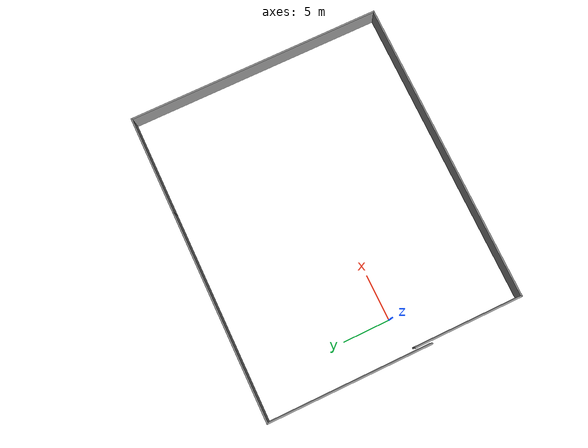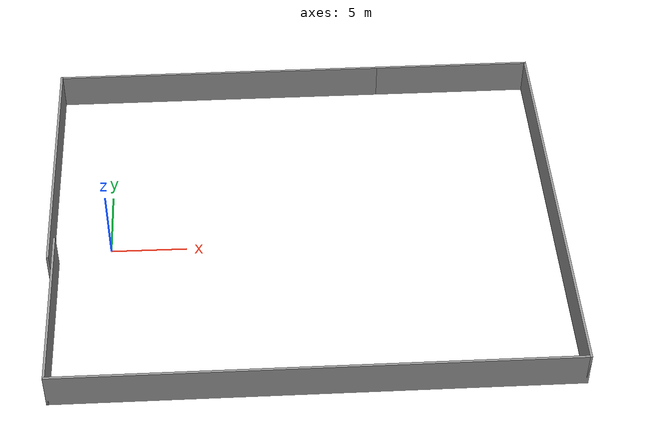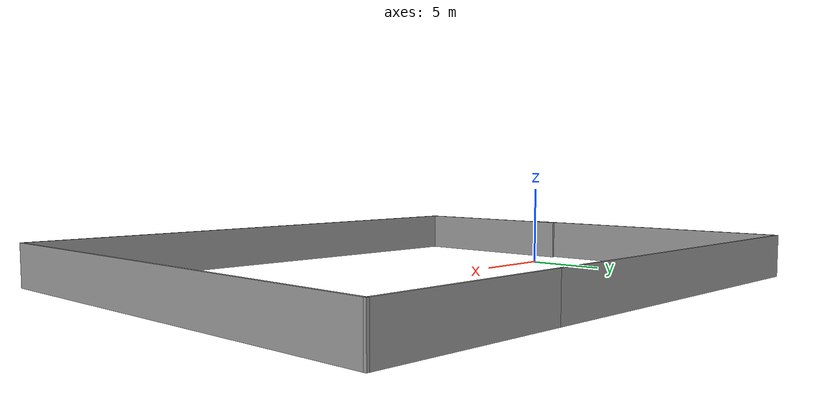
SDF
<?xml version='1.0'?>
<sdf version='1.7'>
  <model name='wall'>
    <pose>12.885 1.19 0 0 -0 0</pose>
    <link name='Wall_0'>
      <collision name='Wall_0_Collision'>
        <geometry>
          <box>
            <size>11.75 0.15 2.5</size>
          </box>
        </geometry>
        <pose>0 0 1.25 0 -0 0</pose>
      </collision>
      <visual name='Wall_0_Visual'>
        <pose>0 0 1.25 0 -0 0</pose>
        <geometry>
          <box>
            <size>11.75 0.15 2.5</size>
          </box>
        </geometry>
        <material>
          <script>
            <uri>file://media/materials/scripts/gazebo.material</uri>
            <name>Gazebo/Grey</name>
          </script>
          <ambient>1 1 1 1</ambient>
        </material>
        <meta>
          <layer>0</layer>
        </meta>
      </visual>
      <pose>-16.375 -8 0 0 -0 -1.5708</pose>
    </link>
    <link name='Wall_1'>
      <collision name='Wall_1_Collision'>
        <geometry>
          <box>
            <size>33.25 0.15 2.5</size>
          </box>
        </geometry>
        <pose>0 0 1.25 0 -0 0</pose>
      </collision>
      <visual name='Wall_1_Visual'>
        <pose>0 0 1.25 0 -0 0</pose>
        <geometry>
          <box>
            <size>33.25 0.15 2.5</size>
          </box>
        </geometry>
        <material>
          <script>
            <uri>file://media/materials/scripts/gazebo.material</uri>
            <name>Gazebo/Grey</name>
          </script>
          <ambient>1 1 1 1</ambient>
        </material>
        <meta>
          <layer>0</layer>
        </meta>
      </visual>
      <pose>0.175 -13.8 0 0 -0 0</pose>
    </link>
    <link name='Wall_2'>
      <collision name='Wall_2_Collision'>
        <geometry>
          <box>
            <size>27.75 0.15 2.5</size>
          </box>
        </geometry>
        <pose>0 0 1.25 0 -0 0</pose>
      </collision>
      <visual name='Wall_2_Visual'>
        <pose>0 0 1.25 0 -0 0</pose>
        <geometry>
          <box>
            <size>27.75 0.15 2.5</size>
          </box>
        </geometry>
        <material>
          <script>
            <uri>file://media/materials/scripts/gazebo.material</uri>
            <name>Gazebo/Grey</name>
          </script>
          <ambient>1 1 1 1</ambient>
        </material>
        <meta>
          <layer>0</layer>
        </meta>
      </visual>
      <pose>16.725 -0 0 0 -0 1.5708</pose>
    </link>
    <link name='Wall_3'>
      <collision name='Wall_3_Collision'>
        <geometry>
          <box>
            <size>11 0.15 2.5</size>
          </box>
        </geometry>
        <pose>0 0 1.25 0 -0 0</pose>
      </collision>
      <visual name='Wall_3_Visual'>
        <pose>0 0 1.25 0 -0 0</pose>
        <geometry>
          <box>
            <size>11 0.15 2.5</size>
          </box>
        </geometry>
        <material>
          <script>
            <uri>file://media/materials/scripts/gazebo.material</uri>
            <name>Gazebo/Grey</name>
          </script>
          <ambient>1 1 1 1</ambient>
        </material>
        <meta>
          <layer>0</layer>
        </meta>
      </visual>
      <pose>11.3 13.8 0 0 -0 3.14159</pose>
    </link>
    <link name='Wall_4'>
      <collision name='Wall_4_Collision'>
        <geometry>
          <box>
            <size>22.75 0.15 2.5</size>
          </box>
        </geometry>
        <pose>0 0 1.25 0 -0 0</pose>
      </collision>
      <visual name='Wall_4_Visual'>
        <pose>0 0 1.25 0 -0 0</pose>
        <geometry>
          <box>
            <size>22.75 0.15 2.5</size>
          </box>
        </geometry>
        <material>
          <script>
            <uri>file://media/materials/scripts/gazebo.material</uri>
            <name>Gazebo/Grey</name>
          </script>
          <ambient>1 1 1 1</ambient>
        </material>
        <meta>
          <layer>0</layer>
        </meta>
      </visual>
      <pose>-5.425 13.8 0 0 -0 3.14159</pose>
    </link>
    <link name='Wall_5'>
      <collision name='Wall_5_Collision'>
        <geometry>
          <box>
            <size>17.75 0.15 2.5</size>
          </box>
        </geometry>
        <pose>0 0 1.25 0 -0 0</pose>
      </collision>
      <visual name='Wall_5_Visual'>
        <pose>0 0 1.25 0 -0 0</pose>
        <geometry>
          <box>
            <size>17.75 0.15 2.5</size>
          </box>
        </geometry>
        <material>
          <script>
            <uri>file://media/materials/scripts/gazebo.material</uri>
            <name>Gazebo/Grey</name>
          </script>
          <ambient>1 1 1 1</ambient>
        </material>
        <meta>
          <layer>0</layer>
        </meta>
      </visual>
      <pose>-16.725 5 0 0 -0 -1.5708</pose>
    </link>
    <static>1</static>
  </model>
</sdf>
